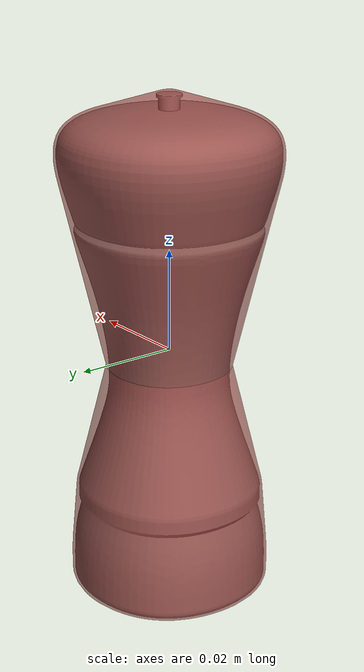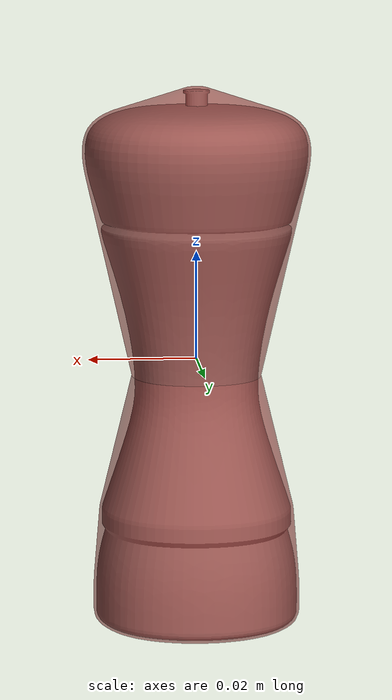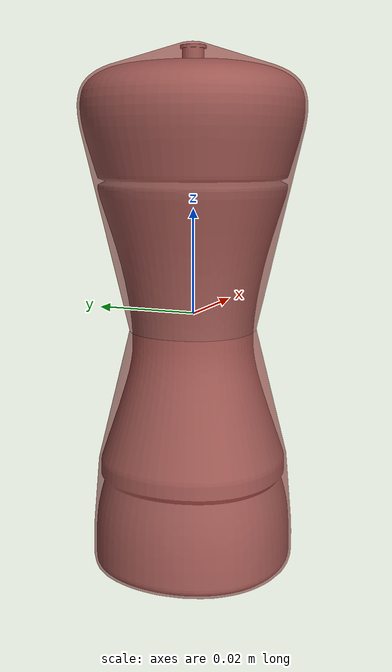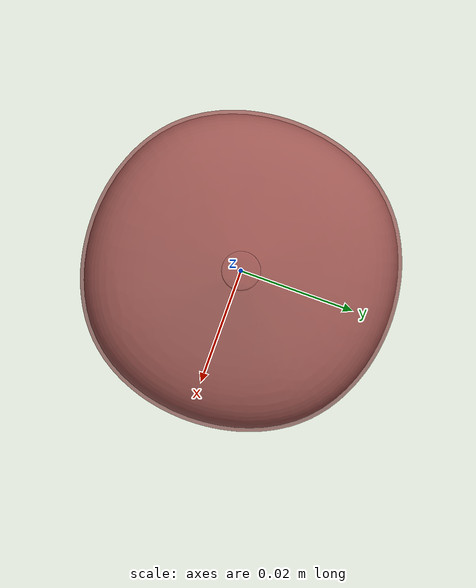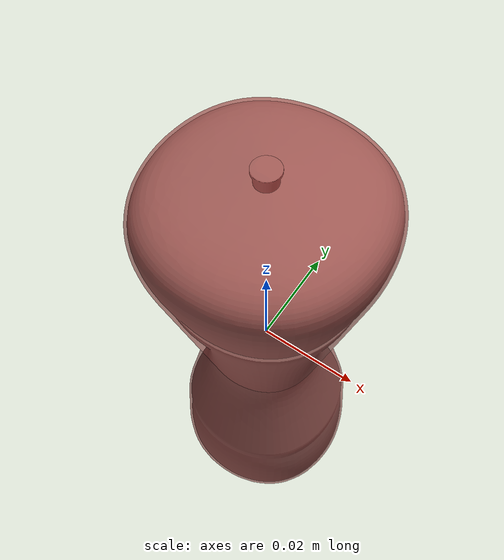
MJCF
<mujoco model="model">
  <option timestep="0.002" gravity="0.0 0.0 -9.81"/>
  <compiler angle="radian"/>
  <asset>
    <mesh file="visual/SaltShaker009.obj" name="SaltShaker009_vis"/>
    <mesh file="visual/prop.obj" name="SaltShaker009_prop_vis"/>
    <texture file="visual/T_BC001.png" name="SaltShaker009_material" type="2d"/>
    <material name="SaltShaker009_material" rgba="1 1 1 1.0" texture="SaltShaker009_material" shininess="0.5" specular="0.3103448502657381"/>
    <texture file="visual/T_BC001.png" name="SaltShaker009_prop_material" type="2d"/>
    <material name="SaltShaker009_prop_material" rgba="1 1 1 1.0" texture="SaltShaker009_prop_material" shininess="0.1" specular="10"/>
    <mesh file="collision/collision_mesh_collision_0.obj" name="SaltShaker009_collision_mesh_0"/>
    <mesh file="collision/collision_mesh_collision_1.obj" name="SaltShaker009_collision_mesh_1"/>
  </asset>
  <default>
    <default class="visual">
      <geom conaffinity="0" contype="0" group="1" type="mesh"/>
    </default>
    <default class="collision">
      <geom group="0" rgba="0.5 0 0 0.5" density="1000.0"/>
    </default>
    <default class="spawn">
      <geom group="0" rgba="1 1 1 0.5" contype="0" conaffinity="0"/>
      <site group="0" rgba="1 1 1 0.5"/>
    </default>
    <default class="region">
      <geom group="1" conaffinity="0" contype="0" rgba="0 1 0 0" mass="0"/>
    </default>
  </default>
  <worldbody>
    <body>
      <body name="object">
        <geom mesh="SaltShaker009_vis" type="mesh" solimp="0.998 0.998 0.001" solref="0.001 1" friction="0.95 0.3 0.1" class="visual" material="SaltShaker009_material"/>
        <body name="SaltShaker009_prop">
          <geom mesh="SaltShaker009_prop_vis" type="mesh" solimp="0.998 0.998 0.001" solref="0.001 1" friction="0.95 0.3 0.1" class="visual" material="SaltShaker009_prop_material"/>
        </body>
        <geom class="region" name="reg_bbox" type="box" pos="0.0 4.999999999102944e-09 1.0449999999981308e-06" size="0.02090358 0.020899485000000002 0.050271245"/>
        <geom mesh="SaltShaker009_collision_mesh_0" type="mesh" class="collision"/>
        <geom mesh="SaltShaker009_collision_mesh_1" type="mesh" class="collision"/>
      </body>
      <site rgba="0 1 0 0" size="0.005" pos="0.0767095999999999 0 0" name="anchor_site"/>
    </body>
  </worldbody>
  <actuator/>
</mujoco>
